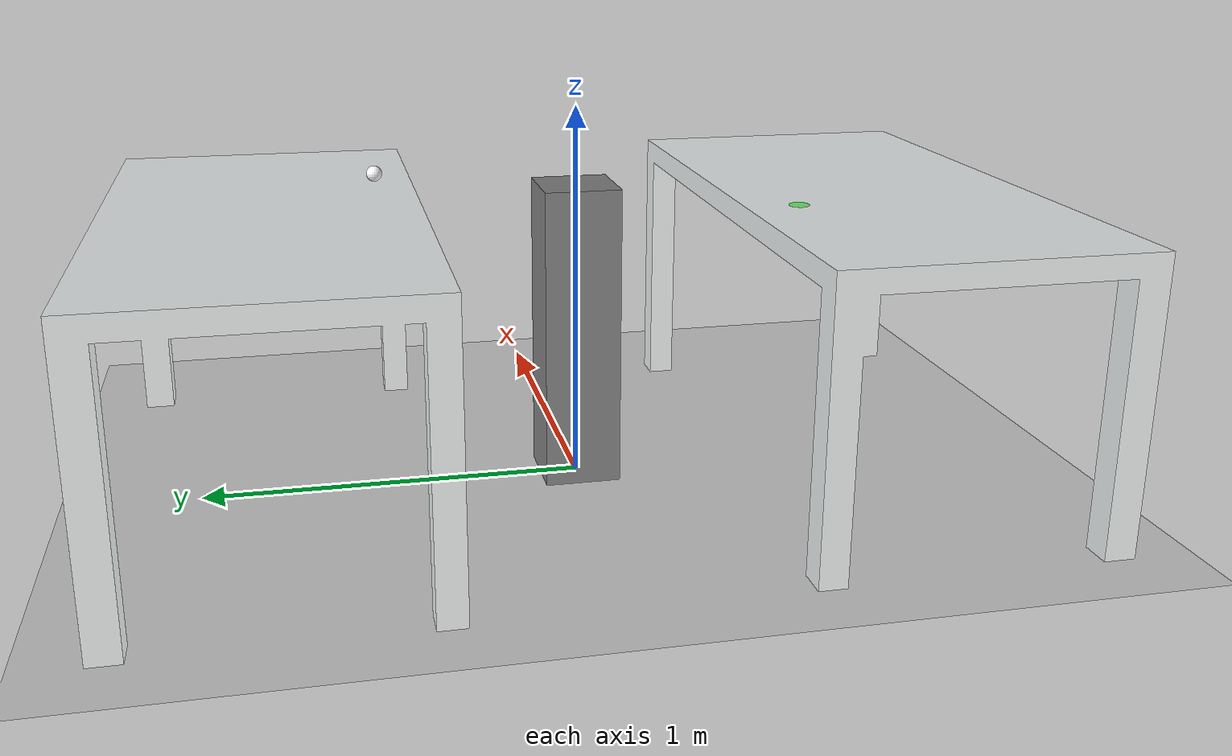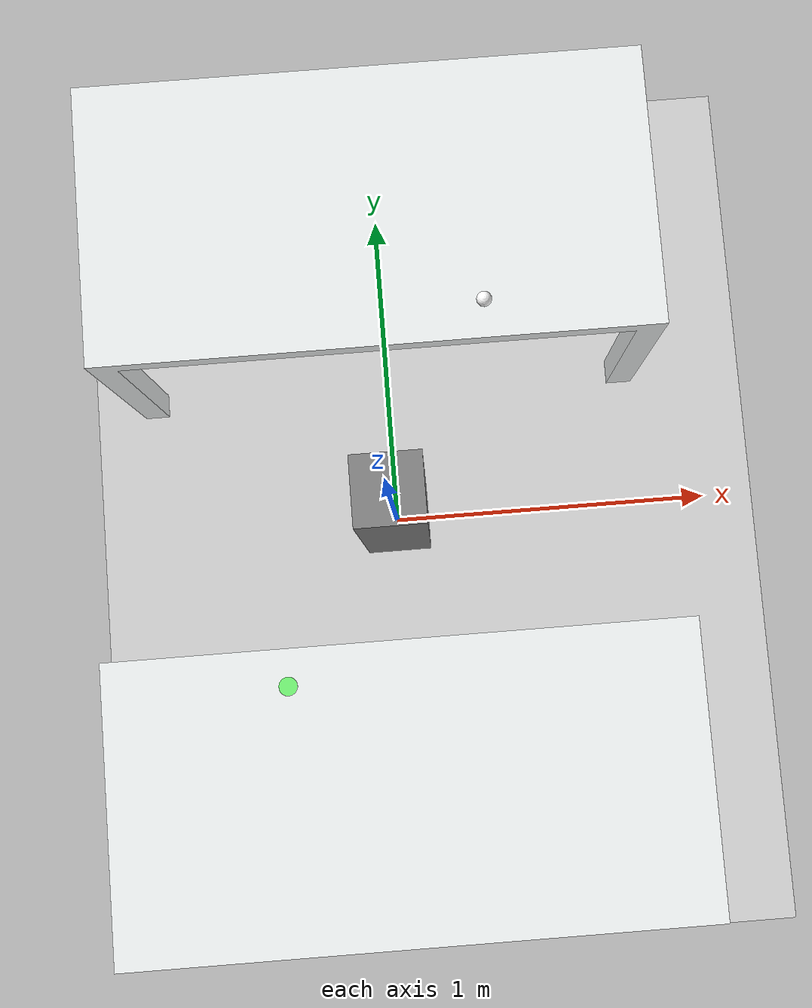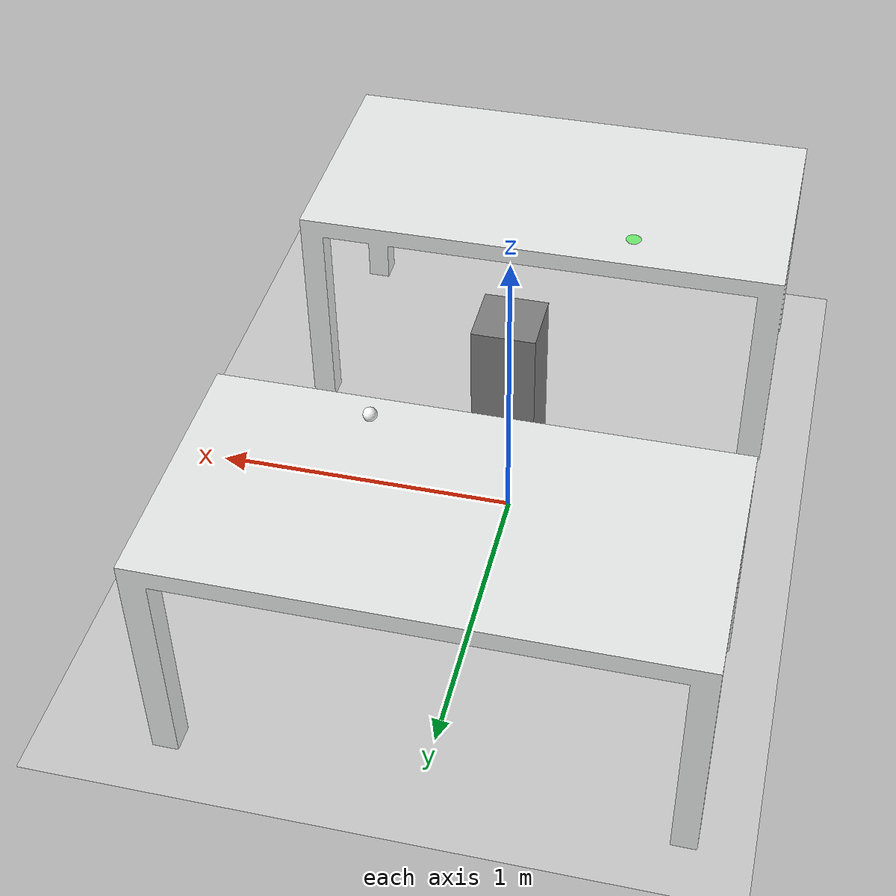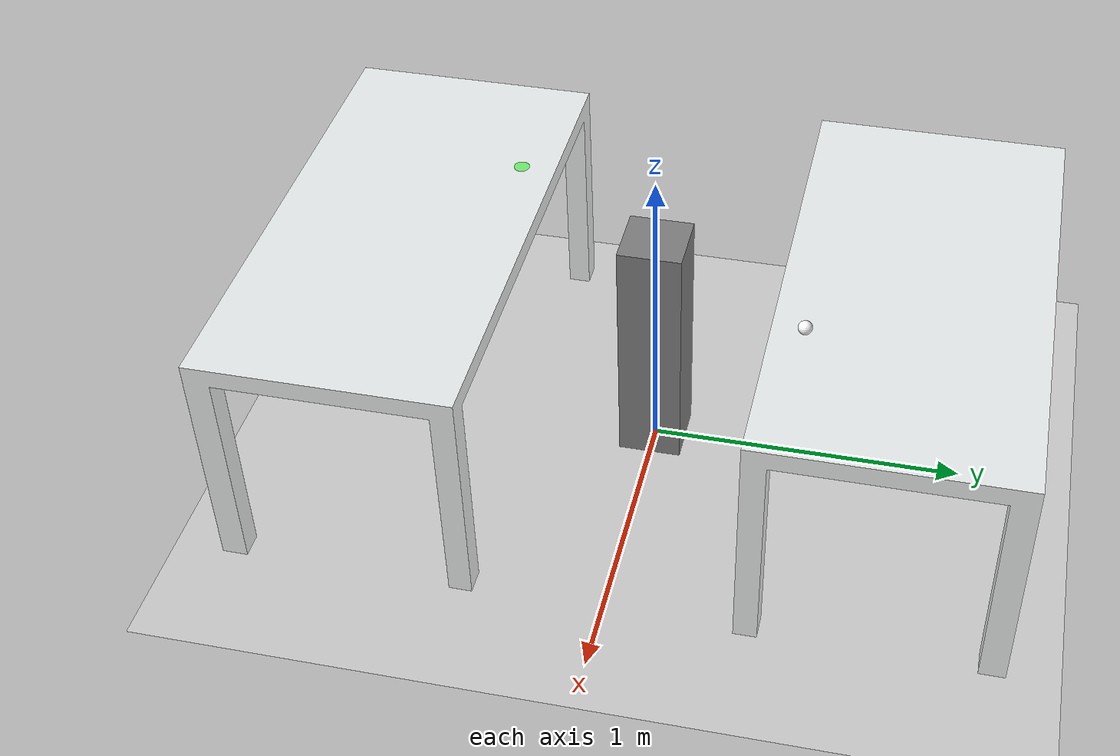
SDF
<?xml version="1.0" ?>

<sdf version="1.4">

  <world name="default">

    <!-- WORLD COMPONENTS: STANDARD -->

    <gravity>0 0 -9.8</gravity>

    <include>
      <uri>model://ground_plane</uri>
    </include>

    <include>
      <uri>model://sun</uri>
    </include>

    <scene>
      <shadows>0</shadows>
    </scene>

    <!-- Link Attacher: GAZEBO PLUGIN -->
    <plugin name="gazebo_link_attacher" filename="libgazebo_link_attacher.so"/>

    <model name='robot_stand'>
      <static>true</static>
      <pose>0 0 0.4 0 0 0</pose>
      <link name='stand_link'>
        <inertial>
          <mass>100</mass>
          <pose>0 0 0 0 0 0</pose>
          <inertia>
            <ixx>0.01</ixx>
            <ixy>0</ixy>
            <ixz>0</ixz>
            <iyy>0.01</iyy>
            <iyz>0</iyz>
            <izz>0.01</izz>
          </inertia>
        </inertial>
        <collision name='collision'>
          <pose>0 0 0 0 0 0</pose>
          <geometry>
            <box>
              <size>0.2 0.2 0.8</size>
            </box>
          </geometry>
          <surface>
            <friction>
              <ode>
                <mu>1</mu>
                <mu2>1</mu2>
              </ode>
            </friction>
          </surface>
        </collision>
        <visual name='visual'>
          <pose>0 0 0 0 0 0</pose>
          <geometry>
            <box>
              <size>0.2 0.2 0.8</size>
            </box>
          </geometry>
          <material>
            <ambient>0.5 0.5 0.5 1</ambient>
            <diffuse>0.5 0.5 0.5 1</diffuse>
            <specular>0.1 0.1 0.1 1</specular>
          </material>
        </visual>
      </link>
    </model>

    <!-- Target Table 1 (Rotated 90 degrees - now at front) -->
    <model name='target_table_1'>
      <link name='link'>
        <self_collide>0</self_collide>
        <enable_wind>0</enable_wind>
        <kinematic>0</kinematic>
        <pose frame=''>0 0 0 0 -0 0</pose>
        <gravity>1</gravity>
        <inertial>
          <mass>1</mass>
          <pose frame=''>0 0 0 0 -0 0</pose>
          <inertia>
            <ixx>1</ixx>
            <ixy>0</ixy>
            <ixz>0</ixz>
            <iyy>1</iyy>
            <iyz>0</iyz>
            <izz>1</izz>
          </inertia>
        </inertial>
        <visual name='visual'>
          <pose frame=''>0 0 0.73 0 -0 1.57</pose>
          <geometry>
            <mesh>
              <scale>1 1 1</scale>
              <uri>file:///home/shu/ros2_ws/src/ros2_SimRealRobotControl/packages/ur5e/ros2srrc_ur5e_gazebo/worlds/target_table/meshes/target_table.dae</uri>
            </mesh>
          </geometry>
        </visual>
        <collision name='collision_0'>
          <laser_retro>0</laser_retro>
          <max_contacts>10</max_contacts>
          <pose frame=''>0 0 0.73 0 -0 0</pose>
          <geometry>
            <box>
              <size>1.6 0.8 0.06</size>
            </box>
          </geometry>
          <surface>
            <friction>
              <ode>
                <mu>1</mu>
                <mu2>1</mu2>
                <fdir1>0 0 0</fdir1>
                <slip1>0</slip1>
                <slip2>0</slip2>
              </ode>
              <torsional>
                <coefficient>1</coefficient>
                <patch_radius>0</patch_radius>
                <surface_radius>0</surface_radius>
                <use_patch_radius>1</use_patch_radius>
                <ode>
                  <slip>0</slip>
                </ode>
              </torsional>
            </friction>
            <bounce>
              <restitution_coefficient>0</restitution_coefficient>
              <threshold>1e+06</threshold>
            </bounce>
            <contact>
              <collide_without_contact>0</collide_without_contact>
              <collide_without_contact_bitmask>1</collide_without_contact_bitmask>
              <collide_bitmask>1</collide_bitmask>
              <ode>
                <soft_cfm>0</soft_cfm>
                <soft_erp>0.2</soft_erp>
                <kp>1e+13</kp>
                <kd>1</kd>
                <max_vel>0.01</max_vel>
                <min_depth>0</min_depth>
              </ode>
              <bullet>
                <split_impulse>1</split_impulse>
                <split_impulse_penetration_threshold>-0.01</split_impulse_penetration_threshold>
                <soft_cfm>0</soft_cfm>
                <soft_erp>0.2</soft_erp>
                <kp>1e+13</kp>
                <kd>1</kd>
              </bullet>
            </contact>
          </surface>
        </collision>
      </link>
      <static>1</static>
      <allow_auto_disable>1</allow_auto_disable>
      <pose frame=''>0 0.8 0 0 -0 0</pose>
    </model>

    <!-- Target Table 2 (Rotated 90 degrees - now at back) -->
    <model name='target_table_2'>
      <link name='link'>
        <self_collide>0</self_collide>
        <enable_wind>0</enable_wind>
        <kinematic>0</kinematic>
        <pose frame=''>0 0 0 0 -0 0</pose>
        <gravity>1</gravity>
        <inertial>
          <mass>1</mass>
          <pose frame=''>0 0 0 0 -0 0</pose>
          <inertia>
            <ixx>1</ixx>
            <ixy>0</ixy>
            <ixz>0</ixz>
            <iyy>1</iyy>
            <iyz>0</iyz>
            <izz>1</izz>
          </inertia>
        </inertial>
        <visual name='visual'>
          <pose frame=''>0 0 0.73 0 -0 1.57</pose>
          <geometry>
            <mesh>
              <scale>1 1 1</scale>
              <uri>file:///home/shu/ros2_ws/src/ros2_SimRealRobotControl/packages/ur5e/ros2srrc_ur5e_gazebo/worlds/target_table/meshes/target_table.dae</uri>
            </mesh>
          </geometry>
        </visual>
        <collision name='collision_0'>
          <laser_retro>0</laser_retro>
          <max_contacts>10</max_contacts>
          <pose frame=''>0 0 0.73 0 -0 0</pose>
          <geometry>
            <box>
              <size>1.6 0.8 0.06</size>
            </box>
          </geometry>
          <surface>
            <friction>
              <ode>
                <mu>1</mu>
                <mu2>1</mu2>
                <fdir1>0 0 0</fdir1>
                <slip1>0</slip1>
                <slip2>0</slip2>
              </ode>
              <torsional>
                <coefficient>1</coefficient>
                <patch_radius>0</patch_radius>
                <surface_radius>0</surface_radius>
                <use_patch_radius>1</use_patch_radius>
                <ode>
                  <slip>0</slip>
                </ode>
              </torsional>
            </friction>
            <bounce>
              <restitution_coefficient>0</restitution_coefficient>
              <threshold>1e+06</threshold>
            </bounce>
            <contact>
              <collide_without_contact>0</collide_without_contact>
              <collide_without_contact_bitmask>1</collide_without_contact_bitmask>
              <collide_bitmask>1</collide_bitmask>
              <ode>
                <soft_cfm>0</soft_cfm>
                <soft_erp>0.2</soft_erp>
                <kp>1e+13</kp>
                <kd>1</kd>
                <max_vel>0.01</max_vel>
                <min_depth>0</min_depth>
              </ode>
              <bullet>
                <split_impulse>1</split_impulse>
                <split_impulse_penetration_threshold>-0.01</split_impulse_penetration_threshold>
                <soft_cfm>0</soft_cfm>
                <soft_erp>0.2</soft_erp>
                <kp>1e+13</kp>
                <kd>1</kd>
              </bullet>
            </contact>
          </surface>
        </collision>
      </link>
      <static>1</static>
      <allow_auto_disable>1</allow_auto_disable>
      <pose frame=''>0 -0.8 0 0 -0 3.14159</pose>
    </model>

    <!-- Golf Ball (rotated 90 degrees - now on front table) -->
    <model name="golf_ball">
      <pose>0.3 0.5 0.787 0 0 0</pose>
      <link name="ball_link">
        <collision name="ball_collision">
          <geometry>
            <sphere>
              <radius>0.0214</radius>
            </sphere>
          </geometry>
          <surface>
            <friction>
              <ode>
                <mu>0.5</mu>
                <mu2>0.5</mu2>
              </ode>
            </friction>
          </surface>
        </collision>
        <visual name="ball_visual">
          <geometry>
            <sphere>
              <radius>0.0214</radius>
            </sphere>
          </geometry>
          <material>
            <ambient>1 1 1 1</ambient>
            <diffuse>1 1 1 1</diffuse>
          </material>
        </visual>
        <inertial>
          <mass>0.046</mass>
          <inertia>
            <ixx>0.00001</ixx>
            <ixy>0</ixy>
            <ixz>0</ixz>
            <iyy>0.00001</iyy>
            <iyz>0</iyz>
            <izz>0.00001</izz>
          </inertia>
        </inertial>
      </link>
    </model>

    <!-- Target position marker (rotated 90 degrees - now on back table) -->
    <model name="target_marker">
      <pose>-0.3 -0.5 0.787 0 0 0</pose>
      <static>true</static>
      <link name="marker_link">
        <visual name="marker_visual">
          <geometry>
            <cylinder>
              <radius>0.025</radius>
              <length>0.002</length>
            </cylinder>
          </geometry>
          <material>
            <ambient>0 1 0 0.5</ambient>
            <diffuse>0 1 0 0.5</diffuse>
          </material>
        </visual>
      </link>
    </model>

    <!-- Physics settings -->
    <physics type="ode">
      <max_step_size>0.001</max_step_size>
      <real_time_factor>1.0</real_time_factor>
      <real_time_update_rate>1000</real_time_update_rate>
      <gravity>0 0 -9.81</gravity>
    </physics>

    <!-- Scene settings -->
    <scene>
      <ambient>0.4 0.4 0.4 1</ambient>
      <background>0.7 0.7 0.7 1</background>
      <shadows>true</shadows>
    </scene>

    <!-- GUI settings -->
    <gui fullscreen="0">
      <camera name="user_camera">
        <pose>1.5 1.5 1.5 0 0.5 -2.4</pose>
        <view_controller>orbit</view_controller>
      </camera>
    </gui>

  </world>
</sdf>
